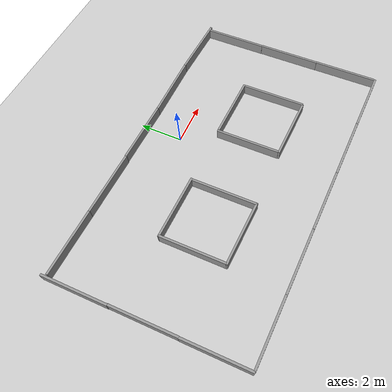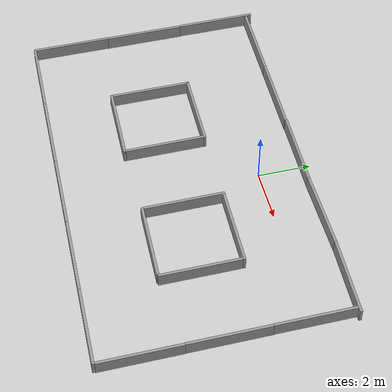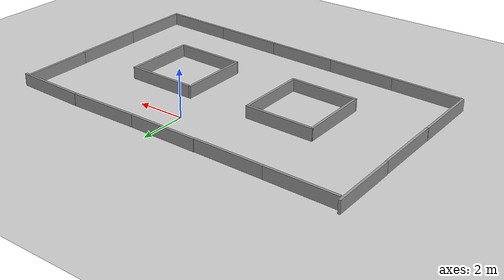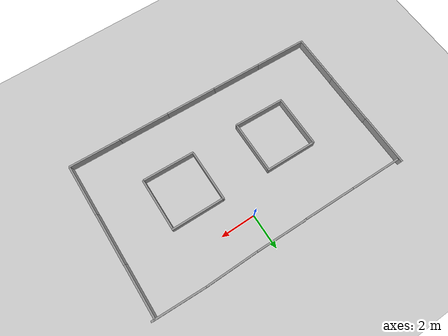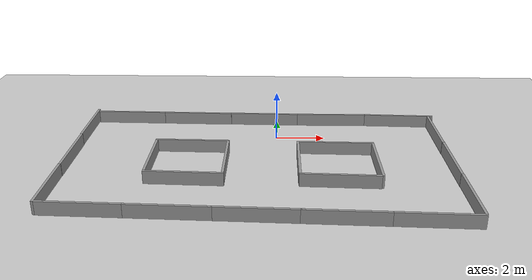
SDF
<sdf version="1.6">
 <world name="default">
  <light name="sun" type="directional">
   <pose>0 0 10 0 -0 0</pose>
   <diffuse>0.8 0.8 0.8 1</diffuse>
   <specular>0.1 0.1 0.1 1</specular>
   <attenuation>
    <range>1000</range>
    <constant>0.9</constant>
    <linear>0.01</linear>
    <quadratic>0.001</quadratic>
   </attenuation>
   <direction>-0.5 0.5 -1</direction>
  </light>
  <model name="ground_plane">
   <static>1</static>
   <link name="link">
    <collision name="collision">
     <geometry><plane><normal>0 0 1</normal><size>100 100</size></plane></geometry>
     <surface><friction><ode><mu>100</mu><mu2>50</mu2></ode></friction></surface>
    </collision>
    <visual name="visual">
     <cast_shadows>0</cast_shadows>
     <geometry><plane><normal>0 0 1</normal><size>100 100</size></plane></geometry>
     <material>
      <script><uri>file://media/materials/scripts/gazebo.material</uri><name>Gazebo/Grey</name></script>
     </material>
    </visual>
   </link>
  </model>
  <gravity>0 0 -9.8</gravity>
  <magnetic_field>6e-06 2.3e-05 -4.2e-05</magnetic_field>
  <atmosphere type="adiabatic"/>
  <physics name="default_physics" default="0" type="ode">
   <max_step_size>0.001</max_step_size>
   <real_time_factor>1</real_time_factor>
   <real_time_update_rate>1000</real_time_update_rate>
  </physics>
  <scene><ambient>0.4 0.4 0.4 1</ambient><background>0.7 0.7 0.7 1</background><shadows>1</shadows></scene>
  <spherical_coordinates>
   <surface_model>EARTH_WGS84</surface_model>
   <latitude_deg>0</latitude_deg>
   <longitude_deg>0</longitude_deg>
   <elevation>0</elevation>
   <heading_deg>0</heading_deg>
  </spherical_coordinates>
  <model name="plank_clone">
   <link name="link">
    <inertial>
     <mass>1</mass>
     <inertia>
      <ixx>0.166667</ixx>
      <ixy>0</ixy>
      <ixz>0</ixz>
      <iyy>0.166667</iyy>
      <iyz>0</iyz>
      <izz>0.166667</izz>
     </inertia>
    </inertial>
    <visual name="visual">
     <geometry><box><size>0.1 3 1</size></box></geometry>
     <material>
      <script><name>Gazebo/Grey</name><uri>file://media/materials/scripts/gazebo.material</uri></script>
      <ambient>0.3 0.3 0.3 1</ambient>
      <diffuse>0.7 0.7 0.7 1</diffuse>
      <specular>0.01 0.01 0.01 1</specular>
      <emissive>0 0 0 1</emissive>
      <shader type="vertex"><normal_map>__default__</normal_map></shader>
     </material>
    </visual>
    <collision name="collision">
     <geometry><box><size>0.1 3 1</size></box></geometry>
     <surface>
      <friction>
       <ode><mu>1</mu><mu2>1</mu2><fdir1>0 0 0</fdir1><slip1>0</slip1><slip2>0</slip2></ode>
       <torsional>
        <coefficient>1</coefficient>
        <patch_radius>0</patch_radius>
        <surface_radius>0</surface_radius>
        <use_patch_radius>1</use_patch_radius>
        <ode><slip>0</slip></ode>
       </torsional>
      </friction>
      <bounce><restitution_coefficient>0</restitution_coefficient><threshold>1e+06</threshold></bounce>
      <contact>
       <collide_without_contact>0</collide_without_contact>
       <collide_without_contact_bitmask>1</collide_without_contact_bitmask>
       <collide_bitmask>1</collide_bitmask>
       <ode>
        <soft_cfm>0</soft_cfm>
        <soft_erp>0.2</soft_erp>
        <kp>1e+13</kp>
        <kd>1</kd>
        <max_vel>0.01</max_vel>
        <min_depth>0</min_depth>
       </ode>
       <bullet>
        <split_impulse>1</split_impulse>
        <split_impulse_penetration_threshold>-0.01</split_impulse_penetration_threshold>
        <soft_cfm>0</soft_cfm>
        <soft_erp>0.2</soft_erp>
        <kp>1e+13</kp>
        <kd>1</kd>
       </bullet>
      </contact>
     </surface>
    </collision>
   </link>
   <static>0</static>
   <pose>0.863631 -3.03591 0 0 -0 0</pose>
  </model>
  <model name="plank_clone_0">
   <link name="link">
    <inertial>
     <mass>1</mass>
     <inertia>
      <ixx>0.166667</ixx>
      <ixy>0</ixy>
      <ixz>0</ixz>
      <iyy>0.166667</iyy>
      <iyz>0</iyz>
      <izz>0.166667</izz>
     </inertia>
    </inertial>
    <visual name="visual">
     <geometry><box><size>0.1 3 1</size></box></geometry>
     <material>
      <script><name>Gazebo/Grey</name><uri>file://media/materials/scripts/gazebo.material</uri></script>
      <ambient>0.3 0.3 0.3 1</ambient>
      <diffuse>0.7 0.7 0.7 1</diffuse>
      <specular>0.01 0.01 0.01 1</specular>
      <emissive>0 0 0 1</emissive>
      <shader type="vertex"><normal_map>__default__</normal_map></shader>
     </material>
    </visual>
    <collision name="collision">
     <geometry><box><size>0.1 3 1</size></box></geometry>
     <surface>
      <friction>
       <ode><mu>1</mu><mu2>1</mu2><fdir1>0 0 0</fdir1><slip1>0</slip1><slip2>0</slip2></ode>
       <torsional>
        <coefficient>1</coefficient>
        <patch_radius>0</patch_radius>
        <surface_radius>0</surface_radius>
        <use_patch_radius>1</use_patch_radius>
        <ode><slip>0</slip></ode>
       </torsional>
      </friction>
      <bounce><restitution_coefficient>0</restitution_coefficient><threshold>1e+06</threshold></bounce>
      <contact>
       <collide_without_contact>0</collide_without_contact>
       <collide_without_contact_bitmask>1</collide_without_contact_bitmask>
       <collide_bitmask>1</collide_bitmask>
       <ode>
        <soft_cfm>0</soft_cfm>
        <soft_erp>0.2</soft_erp>
        <kp>1e+13</kp>
        <kd>1</kd>
        <max_vel>0.01</max_vel>
        <min_depth>0</min_depth>
       </ode>
       <bullet>
        <split_impulse>1</split_impulse>
        <split_impulse_penetration_threshold>-0.01</split_impulse_penetration_threshold>
        <soft_cfm>0</soft_cfm>
        <soft_erp>0.2</soft_erp>
        <kp>1e+13</kp>
        <kd>1</kd>
       </bullet>
      </contact>
     </surface>
    </collision>
   </link>
   <static>0</static>
   <pose>2.4237 1.6118 0 0 -0 1.5742</pose>
  </model>
  <model name="plank_clone_1">
   <link name="link">
    <inertial>
     <mass>1</mass>
     <inertia>
      <ixx>0.166667</ixx>
      <ixy>0</ixy>
      <ixz>0</ixz>
      <iyy>0.166667</iyy>
      <iyz>0</iyz>
      <izz>0.166667</izz>
     </inertia>
    </inertial>
    <visual name="visual">
     <geometry><box><size>0.1 3 1</size></box></geometry>
     <material>
      <script><name>Gazebo/Grey</name><uri>file://media/materials/scripts/gazebo.material</uri></script>
      <ambient>0.3 0.3 0.3 1</ambient>
      <diffuse>0.7 0.7 0.7 1</diffuse>
      <specular>0.01 0.01 0.01 1</specular>
      <emissive>0 0 0 1</emissive>
      <shader type="vertex"><normal_map>__default__</normal_map></shader>
     </material>
    </visual>
    <collision name="collision">
     <geometry><box><size>0.1 3 1</size></box></geometry>
     <surface>
      <friction>
       <ode><mu>1</mu><mu2>1</mu2><fdir1>0 0 0</fdir1><slip1>0</slip1><slip2>0</slip2></ode>
       <torsional>
        <coefficient>1</coefficient>
        <patch_radius>0</patch_radius>
        <surface_radius>0</surface_radius>
        <use_patch_radius>1</use_patch_radius>
        <ode><slip>0</slip></ode>
       </torsional>
      </friction>
      <bounce><restitution_coefficient>0</restitution_coefficient><threshold>1e+06</threshold></bounce>
      <contact>
       <collide_without_contact>0</collide_without_contact>
       <collide_without_contact_bitmask>1</collide_without_contact_bitmask>
       <collide_bitmask>1</collide_bitmask>
       <ode>
        <soft_cfm>0</soft_cfm>
        <soft_erp>0.2</soft_erp>
        <kp>1e+13</kp>
        <kd>1</kd>
        <max_vel>0.01</max_vel>
        <min_depth>0</min_depth>
       </ode>
       <bullet>
        <split_impulse>1</split_impulse>
        <split_impulse_penetration_threshold>-0.01</split_impulse_penetration_threshold>
        <soft_cfm>0</soft_cfm>
        <soft_erp>0.2</soft_erp>
        <kp>1e+13</kp>
        <kd>1</kd>
       </bullet>
      </contact>
     </surface>
    </collision>
   </link>
   <static>0</static>
   <pose>3.86282 -3.20354 0 0 -0 0</pose>
  </model>
  <model name="plank_clone_2">
   <link name="link">
    <inertial>
     <mass>1</mass>
     <inertia>
      <ixx>0.166667</ixx>
      <ixy>0</ixy>
      <ixz>0</ixz>
      <iyy>0.166667</iyy>
      <iyz>0</iyz>
      <izz>0.166667</izz>
     </inertia>
    </inertial>
    <visual name="visual">
     <geometry><box><size>0.1 3 1</size></box></geometry>
     <material>
      <script><name>Gazebo/Grey</name><uri>file://media/materials/scripts/gazebo.material</uri></script>
      <ambient>0.3 0.3 0.3 1</ambient>
      <diffuse>0.7 0.7 0.7 1</diffuse>
      <specular>0.01 0.01 0.01 1</specular>
      <emissive>0 0 0 1</emissive>
      <shader type="vertex"><normal_map>__default__</normal_map></shader>
     </material>
    </visual>
    <collision name="collision">
     <geometry><box><size>0.1 3 1</size></box></geometry>
     <surface>
      <friction>
       <ode><mu>1</mu><mu2>1</mu2><fdir1>0 0 0</fdir1><slip1>0</slip1><slip2>0</slip2></ode>
       <torsional>
        <coefficient>1</coefficient>
        <patch_radius>0</patch_radius>
        <surface_radius>0</surface_radius>
        <use_patch_radius>1</use_patch_radius>
        <ode><slip>0</slip></ode>
       </torsional>
      </friction>
      <bounce><restitution_coefficient>0</restitution_coefficient><threshold>1e+06</threshold></bounce>
      <contact>
       <collide_without_contact>0</collide_without_contact>
       <collide_without_contact_bitmask>1</collide_without_contact_bitmask>
       <collide_bitmask>1</collide_bitmask>
       <ode>
        <soft_cfm>0</soft_cfm>
        <soft_erp>0.2</soft_erp>
        <kp>1e+13</kp>
        <kd>1</kd>
        <max_vel>0.01</max_vel>
        <min_depth>0</min_depth>
       </ode>
       <bullet>
        <split_impulse>1</split_impulse>
        <split_impulse_penetration_threshold>-0.01</split_impulse_penetration_threshold>
        <soft_cfm>0</soft_cfm>
        <soft_erp>0.2</soft_erp>
        <kp>1e+13</kp>
        <kd>1</kd>
       </bullet>
      </contact>
     </surface>
    </collision>
   </link>
   <static>0</static>
   <pose>6.73737 -5.95983 0 0 -0 0</pose>
  </model>
  <model name="plank_clone_3">
   <link name="link">
    <inertial>
     <mass>1</mass>
     <inertia>
      <ixx>0.166667</ixx>
      <ixy>0</ixy>
      <ixz>0</ixz>
      <iyy>0.166667</iyy>
      <iyz>0</iyz>
      <izz>0.166667</izz>
     </inertia>
    </inertial>
    <visual name="visual">
     <geometry><box><size>0.1 3 1</size></box></geometry>
     <material>
      <script><name>Gazebo/Grey</name><uri>file://media/materials/scripts/gazebo.material</uri></script>
      <ambient>0.3 0.3 0.3 1</ambient>
      <diffuse>0.7 0.7 0.7 1</diffuse>
      <specular>0.01 0.01 0.01 1</specular>
      <emissive>0 0 0 1</emissive>
      <shader type="vertex"><normal_map>__default__</normal_map></shader>
     </material>
    </visual>
    <collision name="collision">
     <geometry><box><size>0.1 3 1</size></box></geometry>
     <surface>
      <friction>
       <ode><mu>1</mu><mu2>1</mu2><fdir1>0 0 0</fdir1><slip1>0</slip1><slip2>0</slip2></ode>
       <torsional>
        <coefficient>1</coefficient>
        <patch_radius>0</patch_radius>
        <surface_radius>0</surface_radius>
        <use_patch_radius>1</use_patch_radius>
        <ode><slip>0</slip></ode>
       </torsional>
      </friction>
      <bounce><restitution_coefficient>0</restitution_coefficient><threshold>1e+06</threshold></bounce>
      <contact>
       <collide_without_contact>0</collide_without_contact>
       <collide_without_contact_bitmask>1</collide_without_contact_bitmask>
       <collide_bitmask>1</collide_bitmask>
       <ode>
        <soft_cfm>0</soft_cfm>
        <soft_erp>0.2</soft_erp>
        <kp>1e+13</kp>
        <kd>1</kd>
        <max_vel>0.01</max_vel>
        <min_depth>0</min_depth>
       </ode>
       <bullet>
        <split_impulse>1</split_impulse>
        <split_impulse_penetration_threshold>-0.01</split_impulse_penetration_threshold>
        <soft_cfm>0</soft_cfm>
        <soft_erp>0.2</soft_erp>
        <kp>1e+13</kp>
        <kd>1</kd>
       </bullet>
      </contact>
     </surface>
    </collision>
   </link>
   <static>0</static>
   <pose>-0.563399 1.64199 0 0 0 -1.59343</pose>
  </model>
  <model name="plank_clone_4">
   <link name="link">
    <inertial>
     <mass>1</mass>
     <inertia>
      <ixx>0.166667</ixx>
      <ixy>0</ixy>
      <ixz>0</ixz>
      <iyy>0.166667</iyy>
      <iyz>0</iyz>
      <izz>0.166667</izz>
     </inertia>
    </inertial>
    <visual name="visual">
     <geometry><box><size>0.1 3 1</size></box></geometry>
     <material>
      <script><name>Gazebo/Grey</name><uri>file://media/materials/scripts/gazebo.material</uri></script>
      <ambient>0.3 0.3 0.3 1</ambient>
      <diffuse>0.7 0.7 0.7 1</diffuse>
      <specular>0.01 0.01 0.01 1</specular>
      <emissive>0 0 0 1</emissive>
      <shader type="vertex"><normal_map>__default__</normal_map></shader>
     </material>
    </visual>
    <collision name="collision">
     <geometry><box><size>0.1 3 1</size></box></geometry>
     <surface>
      <friction>
       <ode><mu>1</mu><mu2>1</mu2><fdir1>0 0 0</fdir1><slip1>0</slip1><slip2>0</slip2></ode>
       <torsional>
        <coefficient>1</coefficient>
        <patch_radius>0</patch_radius>
        <surface_radius>0</surface_radius>
        <use_patch_radius>1</use_patch_radius>
        <ode><slip>0</slip></ode>
       </torsional>
      </friction>
      <bounce><restitution_coefficient>0</restitution_coefficient><threshold>1e+06</threshold></bounce>
      <contact>
       <collide_without_contact>0</collide_without_contact>
       <collide_without_contact_bitmask>1</collide_without_contact_bitmask>
       <collide_bitmask>1</collide_bitmask>
       <ode>
        <soft_cfm>0</soft_cfm>
        <soft_erp>0.2</soft_erp>
        <kp>1e+13</kp>
        <kd>1</kd>
        <max_vel>0.01</max_vel>
        <min_depth>0</min_depth>
       </ode>
       <bullet>
        <split_impulse>1</split_impulse>
        <split_impulse_penetration_threshold>-0.01</split_impulse_penetration_threshold>
        <soft_cfm>0</soft_cfm>
        <soft_erp>0.2</soft_erp>
        <kp>1e+13</kp>
        <kd>1</kd>
       </bullet>
      </contact>
     </surface>
    </collision>
   </link>
   <static>0</static>
   <pose>2.41117 -1.61641 0 0 0 -1.59535</pose>
  </model>
  <model name="plank_clone_5">
   <link name="link">
    <inertial>
     <mass>1</mass>
     <inertia>
      <ixx>0.166667</ixx>
      <ixy>0</ixy>
      <ixz>0</ixz>
      <iyy>0.166667</iyy>
      <iyz>0</iyz>
      <izz>0.166667</izz>
     </inertia>
    </inertial>
    <visual name="visual">
     <geometry><box><size>0.1 3 1</size></box></geometry>
     <material>
      <script><name>Gazebo/Grey</name><uri>file://media/materials/scripts/gazebo.material</uri></script>
      <ambient>0.3 0.3 0.3 1</ambient>
      <diffuse>0.7 0.7 0.7 1</diffuse>
      <specular>0.01 0.01 0.01 1</specular>
      <emissive>0 0 0 1</emissive>
      <shader type="vertex"><normal_map>__default__</normal_map></shader>
     </material>
    </visual>
    <collision name="collision">
     <geometry><box><size>0.1 3 1</size></box></geometry>
     <surface>
      <friction>
       <ode><mu>1</mu><mu2>1</mu2><fdir1>0 0 0</fdir1><slip1>0</slip1><slip2>0</slip2></ode>
       <torsional>
        <coefficient>1</coefficient>
        <patch_radius>0</patch_radius>
        <surface_radius>0</surface_radius>
        <use_patch_radius>1</use_patch_radius>
        <ode><slip>0</slip></ode>
       </torsional>
      </friction>
      <bounce><restitution_coefficient>0</restitution_coefficient><threshold>1e+06</threshold></bounce>
      <contact>
       <collide_without_contact>0</collide_without_contact>
       <collide_without_contact_bitmask>1</collide_without_contact_bitmask>
       <collide_bitmask>1</collide_bitmask>
       <ode>
        <soft_cfm>0</soft_cfm>
        <soft_erp>0.2</soft_erp>
        <kp>1e+13</kp>
        <kd>1</kd>
        <max_vel>0.01</max_vel>
        <min_depth>0</min_depth>
       </ode>
       <bullet>
        <split_impulse>1</split_impulse>
        <split_impulse_penetration_threshold>-0.01</split_impulse_penetration_threshold>
        <soft_cfm>0</soft_cfm>
        <soft_erp>0.2</soft_erp>
        <kp>1e+13</kp>
        <kd>1</kd>
       </bullet>
      </contact>
     </surface>
    </collision>
   </link>
   <static>0</static>
   <pose>2.32848 -4.63058 0 0 0 -1.61065</pose>
  </model>
  <model name="plank_clone_6">
   <link name="link">
    <inertial>
     <mass>1</mass>
     <inertia>
      <ixx>0.166667</ixx>
      <ixy>0</ixy>
      <ixz>0</ixz>
      <iyy>0.166667</iyy>
      <iyz>0</iyz>
      <izz>0.166667</izz>
     </inertia>
    </inertial>
    <visual name="visual">
     <geometry><box><size>0.1 3 1</size></box></geometry>
     <material>
      <script><name>Gazebo/Grey</name><uri>file://media/materials/scripts/gazebo.material</uri></script>
      <ambient>0.3 0.3 0.3 1</ambient>
      <diffuse>0.7 0.7 0.7 1</diffuse>
      <specular>0.01 0.01 0.01 1</specular>
      <emissive>0 0 0 1</emissive>
      <shader type="vertex"><normal_map>__default__</normal_map></shader>
     </material>
    </visual>
    <collision name="collision">
     <geometry><box><size>0.1 3 1</size></box></geometry>
     <surface>
      <friction>
       <ode><mu>1</mu><mu2>1</mu2><fdir1>0 0 0</fdir1><slip1>0</slip1><slip2>0</slip2></ode>
       <torsional>
        <coefficient>1</coefficient>
        <patch_radius>0</patch_radius>
        <surface_radius>0</surface_radius>
        <use_patch_radius>1</use_patch_radius>
        <ode><slip>0</slip></ode>
       </torsional>
      </friction>
      <bounce><restitution_coefficient>0</restitution_coefficient><threshold>1e+06</threshold></bounce>
      <contact>
       <collide_without_contact>0</collide_without_contact>
       <collide_without_contact_bitmask>1</collide_without_contact_bitmask>
       <collide_bitmask>1</collide_bitmask>
       <ode>
        <soft_cfm>0</soft_cfm>
        <soft_erp>0.2</soft_erp>
        <kp>1e+13</kp>
        <kd>1</kd>
        <max_vel>0.01</max_vel>
        <min_depth>0</min_depth>
       </ode>
       <bullet>
        <split_impulse>1</split_impulse>
        <split_impulse_penetration_threshold>-0.01</split_impulse_penetration_threshold>
        <soft_cfm>0</soft_cfm>
        <soft_erp>0.2</soft_erp>
        <kp>1e+13</kp>
        <kd>1</kd>
       </bullet>
      </contact>
     </surface>
    </collision>
   </link>
   <static>0</static>
   <pose>5.4255 1.56052 0 0 0 -1.60899</pose>
  </model>
  <model name="plank_clone_7">
   <link name="link">
    <inertial>
     <mass>1</mass>
     <inertia>
      <ixx>0.166667</ixx>
      <ixy>0</ixy>
      <ixz>0</ixz>
      <iyy>0.166667</iyy>
      <iyz>0</iyz>
      <izz>0.166667</izz>
     </inertia>
    </inertial>
    <visual name="visual">
     <geometry><box><size>0.1 3 1</size></box></geometry>
     <material>
      <script><name>Gazebo/Grey</name><uri>file://media/materials/scripts/gazebo.material</uri></script>
      <ambient>0.3 0.3 0.3 1</ambient>
      <diffuse>0.7 0.7 0.7 1</diffuse>
      <specular>0.01 0.01 0.01 1</specular>
      <emissive>0 0 0 1</emissive>
      <shader type="vertex"><normal_map>__default__</normal_map></shader>
     </material>
    </visual>
    <collision name="collision">
     <geometry><box><size>0.1 3 1</size></box></geometry>
     <surface>
      <friction>
       <ode><mu>1</mu><mu2>1</mu2><fdir1>0 0 0</fdir1><slip1>0</slip1><slip2>0</slip2></ode>
       <torsional>
        <coefficient>1</coefficient>
        <patch_radius>0</patch_radius>
        <surface_radius>0</surface_radius>
        <use_patch_radius>1</use_patch_radius>
        <ode><slip>0</slip></ode>
       </torsional>
      </friction>
      <bounce><restitution_coefficient>0</restitution_coefficient><threshold>1e+06</threshold></bounce>
      <contact>
       <collide_without_contact>0</collide_without_contact>
       <collide_without_contact_bitmask>1</collide_without_contact_bitmask>
       <collide_bitmask>1</collide_bitmask>
       <ode>
        <soft_cfm>0</soft_cfm>
        <soft_erp>0.2</soft_erp>
        <kp>1e+13</kp>
        <kd>1</kd>
        <max_vel>0.01</max_vel>
        <min_depth>0</min_depth>
       </ode>
       <bullet>
        <split_impulse>1</split_impulse>
        <split_impulse_penetration_threshold>-0.01</split_impulse_penetration_threshold>
        <soft_cfm>0</soft_cfm>
        <soft_erp>0.2</soft_erp>
        <kp>1e+13</kp>
        <kd>1</kd>
       </bullet>
      </contact>
     </surface>
    </collision>
   </link>
   <static>0</static>
   <pose>6.72099 0.005847 0 0 -0 0</pose>
  </model>
  <model name="plank_clone_8">
   <link name="link">
    <inertial>
     <mass>1</mass>
     <inertia>
      <ixx>0.166667</ixx>
      <ixy>0</ixy>
      <ixz>0</ixz>
      <iyy>0.166667</iyy>
      <iyz>0</iyz>
      <izz>0.166667</izz>
     </inertia>
    </inertial>
    <visual name="visual">
     <geometry><box><size>0.1 3 1</size></box></geometry>
     <material>
      <script><name>Gazebo/Grey</name><uri>file://media/materials/scripts/gazebo.material</uri></script>
      <ambient>0.3 0.3 0.3 1</ambient>
      <diffuse>0.7 0.7 0.7 1</diffuse>
      <specular>0.01 0.01 0.01 1</specular>
      <emissive>0 0 0 1</emissive>
      <shader type="vertex"><normal_map>__default__</normal_map></shader>
     </material>
    </visual>
    <collision name="collision">
     <geometry><box><size>0.1 3 1</size></box></geometry>
     <surface>
      <friction>
       <ode><mu>1</mu><mu2>1</mu2><fdir1>0 0 0</fdir1><slip1>0</slip1><slip2>0</slip2></ode>
       <torsional>
        <coefficient>1</coefficient>
        <patch_radius>0</patch_radius>
        <surface_radius>0</surface_radius>
        <use_patch_radius>1</use_patch_radius>
        <ode><slip>0</slip></ode>
       </torsional>
      </friction>
      <bounce><restitution_coefficient>0</restitution_coefficient><threshold>1e+06</threshold></bounce>
      <contact>
       <collide_without_contact>0</collide_without_contact>
       <collide_without_contact_bitmask>1</collide_without_contact_bitmask>
       <collide_bitmask>1</collide_bitmask>
       <ode>
        <soft_cfm>0</soft_cfm>
        <soft_erp>0.2</soft_erp>
        <kp>1e+13</kp>
        <kd>1</kd>
        <max_vel>0.01</max_vel>
        <min_depth>0</min_depth>
       </ode>
       <bullet>
        <split_impulse>1</split_impulse>
        <split_impulse_penetration_threshold>-0.01</split_impulse_penetration_threshold>
        <soft_cfm>0</soft_cfm>
        <soft_erp>0.2</soft_erp>
        <kp>1e+13</kp>
        <kd>1</kd>
       </bullet>
      </contact>
     </surface>
    </collision>
   </link>
   <static>0</static>
   <pose>6.72965 -2.96387 0 0 -0 0</pose>
  </model>
  <model name="plank_clone_3_clone">
   <link name="link">
    <inertial>
     <mass>1</mass>
     <inertia>
      <ixx>0.166667</ixx>
      <ixy>0</ixy>
      <ixz>0</ixz>
      <iyy>0.166667</iyy>
      <iyz>0</iyz>
      <izz>0.166667</izz>
     </inertia>
    </inertial>
    <visual name="visual">
     <geometry><box><size>0.1 3 1</size></box></geometry>
     <material>
      <script><name>Gazebo/Grey</name><uri>file://media/materials/scripts/gazebo.material</uri></script>
      <ambient>0.3 0.3 0.3 1</ambient>
      <diffuse>0.7 0.7 0.7 1</diffuse>
      <specular>0.01 0.01 0.01 1</specular>
      <emissive>0 0 0 1</emissive>
      <shader type="vertex"><normal_map>__default__</normal_map></shader>
     </material>
    </visual>
    <collision name="collision">
     <geometry><box><size>0.1 3 1</size></box></geometry>
     <surface>
      <friction>
       <ode><mu>1</mu><mu2>1</mu2><fdir1>0 0 0</fdir1><slip1>0</slip1><slip2>0</slip2></ode>
       <torsional>
        <coefficient>1</coefficient>
        <patch_radius>0</patch_radius>
        <surface_radius>0</surface_radius>
        <use_patch_radius>1</use_patch_radius>
        <ode><slip>0</slip></ode>
       </torsional>
      </friction>
      <bounce><restitution_coefficient>0</restitution_coefficient><threshold>1e+06</threshold></bounce>
      <contact>
       <collide_without_contact>0</collide_without_contact>
       <collide_without_contact_bitmask>1</collide_without_contact_bitmask>
       <collide_bitmask>1</collide_bitmask>
       <ode>
        <soft_cfm>0</soft_cfm>
        <soft_erp>0.2</soft_erp>
        <kp>1e+13</kp>
        <kd>1</kd>
        <max_vel>0.01</max_vel>
        <min_depth>0</min_depth>
       </ode>
       <bullet>
        <split_impulse>1</split_impulse>
        <split_impulse_penetration_threshold>-0.01</split_impulse_penetration_threshold>
        <soft_cfm>0</soft_cfm>
        <soft_erp>0.2</soft_erp>
        <kp>1e+13</kp>
        <kd>1</kd>
       </bullet>
      </contact>
     </surface>
    </collision>
   </link>
   <static>0</static>
   <pose>-3.54606 1.6904 0 0 0 -1.59343</pose>
  </model>
  <model name="plank_clone_4_clone">
   <link name="link">
    <inertial>
     <mass>1</mass>
     <inertia>
      <ixx>0.166667</ixx>
      <ixy>0</ixy>
      <ixz>0</ixz>
      <iyy>0.166667</iyy>
      <iyz>0</iyz>
      <izz>0.166667</izz>
     </inertia>
    </inertial>
    <visual name="visual">
     <geometry><box><size>0.1 3 1</size></box></geometry>
     <material>
      <script><name>Gazebo/Grey</name><uri>file://media/materials/scripts/gazebo.material</uri></script>
      <ambient>0.3 0.3 0.3 1</ambient>
      <diffuse>0.7 0.7 0.7 1</diffuse>
      <specular>0.01 0.01 0.01 1</specular>
      <emissive>0 0 0 1</emissive>
      <shader type="vertex"><normal_map>__default__</normal_map></shader>
     </material>
    </visual>
    <collision name="collision">
     <geometry><box><size>0.1 3 1</size></box></geometry>
     <surface>
      <friction>
       <ode><mu>1</mu><mu2>1</mu2><fdir1>0 0 0</fdir1><slip1>0</slip1><slip2>0</slip2></ode>
       <torsional>
        <coefficient>1</coefficient>
        <patch_radius>0</patch_radius>
        <surface_radius>0</surface_radius>
        <use_patch_radius>1</use_patch_radius>
        <ode><slip>0</slip></ode>
       </torsional>
      </friction>
      <bounce><restitution_coefficient>0</restitution_coefficient><threshold>1e+06</threshold></bounce>
      <contact>
       <collide_without_contact>0</collide_without_contact>
       <collide_without_contact_bitmask>1</collide_without_contact_bitmask>
       <collide_bitmask>1</collide_bitmask>
       <ode>
        <soft_cfm>0</soft_cfm>
        <soft_erp>0.2</soft_erp>
        <kp>1e+13</kp>
        <kd>1</kd>
        <max_vel>0.01</max_vel>
        <min_depth>0</min_depth>
       </ode>
       <bullet>
        <split_impulse>1</split_impulse>
        <split_impulse_penetration_threshold>-0.01</split_impulse_penetration_threshold>
        <soft_cfm>0</soft_cfm>
        <soft_erp>0.2</soft_erp>
        <kp>1e+13</kp>
        <kd>1</kd>
       </bullet>
      </contact>
     </surface>
    </collision>
   </link>
   <static>0</static>
   <pose>-3.41195 -1.50479 0 0 0 -1.59535</pose>
  </model>
  <model name="plank_clone_clone">
   <link name="link">
    <inertial>
     <mass>1</mass>
     <inertia>
      <ixx>0.166667</ixx>
      <ixy>0</ixy>
      <ixz>0</ixz>
      <iyy>0.166667</iyy>
      <iyz>0</iyz>
      <izz>0.166667</izz>
     </inertia>
    </inertial>
    <visual name="visual">
     <geometry><box><size>0.1 3 1</size></box></geometry>
     <material>
      <script><name>Gazebo/Grey</name><uri>file://media/materials/scripts/gazebo.material</uri></script>
      <ambient>0.3 0.3 0.3 1</ambient>
      <diffuse>0.7 0.7 0.7 1</diffuse>
      <specular>0.01 0.01 0.01 1</specular>
      <emissive>0 0 0 1</emissive>
      <shader type="vertex"><normal_map>__default__</normal_map></shader>
     </material>
    </visual>
    <collision name="collision">
     <geometry><box><size>0.1 3 1</size></box></geometry>
     <surface>
      <friction>
       <ode><mu>1</mu><mu2>1</mu2><fdir1>0 0 0</fdir1><slip1>0</slip1><slip2>0</slip2></ode>
       <torsional>
        <coefficient>1</coefficient>
        <patch_radius>0</patch_radius>
        <surface_radius>0</surface_radius>
        <use_patch_radius>1</use_patch_radius>
        <ode><slip>0</slip></ode>
       </torsional>
      </friction>
      <bounce><restitution_coefficient>0</restitution_coefficient><threshold>1e+06</threshold></bounce>
      <contact>
       <collide_without_contact>0</collide_without_contact>
       <collide_without_contact_bitmask>1</collide_without_contact_bitmask>
       <collide_bitmask>1</collide_bitmask>
       <ode>
        <soft_cfm>0</soft_cfm>
        <soft_erp>0.2</soft_erp>
        <kp>1e+13</kp>
        <kd>1</kd>
        <max_vel>0.01</max_vel>
        <min_depth>0</min_depth>
       </ode>
       <bullet>
        <split_impulse>1</split_impulse>
        <split_impulse_penetration_threshold>-0.01</split_impulse_penetration_threshold>
        <soft_cfm>0</soft_cfm>
        <soft_erp>0.2</soft_erp>
        <kp>1e+13</kp>
        <kd>1</kd>
       </bullet>
      </contact>
     </surface>
    </collision>
   </link>
   <static>0</static>
   <pose>-1.9673 -3.08449 0 0 -0 0</pose>
  </model>
  <model name="plank_clone_clone_0">
   <link name="link">
    <inertial>
     <mass>1</mass>
     <inertia>
      <ixx>0.166667</ixx>
      <ixy>0</ixy>
      <ixz>0</ixz>
      <iyy>0.166667</iyy>
      <iyz>0</iyz>
      <izz>0.166667</izz>
     </inertia>
    </inertial>
    <visual name="visual">
     <geometry><box><size>0.1 3 1</size></box></geometry>
     <material>
      <script><name>Gazebo/Grey</name><uri>file://media/materials/scripts/gazebo.material</uri></script>
      <ambient>0.3 0.3 0.3 1</ambient>
      <diffuse>0.7 0.7 0.7 1</diffuse>
      <specular>0.01 0.01 0.01 1</specular>
      <emissive>0 0 0 1</emissive>
      <shader type="vertex"><normal_map>__default__</normal_map></shader>
     </material>
    </visual>
    <collision name="collision">
     <geometry><box><size>0.1 3 1</size></box></geometry>
     <surface>
      <friction>
       <ode><mu>1</mu><mu2>1</mu2><fdir1>0 0 0</fdir1><slip1>0</slip1><slip2>0</slip2></ode>
       <torsional>
        <coefficient>1</coefficient>
        <patch_radius>0</patch_radius>
        <surface_radius>0</surface_radius>
        <use_patch_radius>1</use_patch_radius>
        <ode><slip>0</slip></ode>
       </torsional>
      </friction>
      <bounce><restitution_coefficient>0</restitution_coefficient><threshold>1e+06</threshold></bounce>
      <contact>
       <collide_without_contact>0</collide_without_contact>
       <collide_without_contact_bitmask>1</collide_without_contact_bitmask>
       <collide_bitmask>1</collide_bitmask>
       <ode>
        <soft_cfm>0</soft_cfm>
        <soft_erp>0.2</soft_erp>
        <kp>1e+13</kp>
        <kd>1</kd>
        <max_vel>0.01</max_vel>
        <min_depth>0</min_depth>
       </ode>
       <bullet>
        <split_impulse>1</split_impulse>
        <split_impulse_penetration_threshold>-0.01</split_impulse_penetration_threshold>
        <soft_cfm>0</soft_cfm>
        <soft_erp>0.2</soft_erp>
        <kp>1e+13</kp>
        <kd>1</kd>
       </bullet>
      </contact>
     </surface>
    </collision>
   </link>
   <static>0</static>
   <pose>-4.87053 -2.96026 0 0 -0 0</pose>
  </model>
  <model name="plank_clone_5_clone">
   <link name="link">
    <inertial>
     <mass>1</mass>
     <inertia>
      <ixx>0.166667</ixx>
      <ixy>0</ixy>
      <ixz>0</ixz>
      <iyy>0.166667</iyy>
      <iyz>0</iyz>
      <izz>0.166667</izz>
     </inertia>
    </inertial>
    <visual name="visual">
     <geometry><box><size>0.1 3 1</size></box></geometry>
     <material>
      <script><name>Gazebo/Grey</name><uri>file://media/materials/scripts/gazebo.material</uri></script>
      <ambient>0.3 0.3 0.3 1</ambient>
      <diffuse>0.7 0.7 0.7 1</diffuse>
      <specular>0.01 0.01 0.01 1</specular>
      <emissive>0 0 0 1</emissive>
      <shader type="vertex"><normal_map>__default__</normal_map></shader>
     </material>
    </visual>
    <collision name="collision">
     <geometry><box><size>0.1 3 1</size></box></geometry>
     <surface>
      <friction>
       <ode><mu>1</mu><mu2>1</mu2><fdir1>0 0 0</fdir1><slip1>0</slip1><slip2>0</slip2></ode>
       <torsional>
        <coefficient>1</coefficient>
        <patch_radius>0</patch_radius>
        <surface_radius>0</surface_radius>
        <use_patch_radius>1</use_patch_radius>
        <ode><slip>0</slip></ode>
       </torsional>
      </friction>
      <bounce><restitution_coefficient>0</restitution_coefficient><threshold>1e+06</threshold></bounce>
      <contact>
       <collide_without_contact>0</collide_without_contact>
       <collide_without_contact_bitmask>1</collide_without_contact_bitmask>
       <collide_bitmask>1</collide_bitmask>
       <ode>
        <soft_cfm>0</soft_cfm>
        <soft_erp>0.2</soft_erp>
        <kp>1e+13</kp>
        <kd>1</kd>
        <max_vel>0.01</max_vel>
        <min_depth>0</min_depth>
       </ode>
       <bullet>
        <split_impulse>1</split_impulse>
        <split_impulse_penetration_threshold>-0.01</split_impulse_penetration_threshold>
        <soft_cfm>0</soft_cfm>
        <soft_erp>0.2</soft_erp>
        <kp>1e+13</kp>
        <kd>1</kd>
       </bullet>
      </contact>
     </surface>
    </collision>
   </link>
   <static>0</static>
   <pose>-3.41684 -4.54089 0 0 0 -1.61065</pose>
  </model>
  <model name="plank_clone_6_clone">
   <link name="link">
    <inertial>
     <mass>1</mass>
     <inertia>
      <ixx>0.166667</ixx>
      <ixy>0</ixy>
      <ixz>0</ixz>
      <iyy>0.166667</iyy>
      <iyz>0</iyz>
      <izz>0.166667</izz>
     </inertia>
    </inertial>
    <visual name="visual">
     <geometry><box><size>0.1 3 1</size></box></geometry>
     <material>
      <script><name>Gazebo/Grey</name><uri>file://media/materials/scripts/gazebo.material</uri></script>
      <ambient>0.3 0.3 0.3 1</ambient>
      <diffuse>0.7 0.7 0.7 1</diffuse>
      <specular>0.01 0.01 0.01 1</specular>
      <emissive>0 0 0 1</emissive>
      <shader type="vertex"><normal_map>__default__</normal_map></shader>
     </material>
    </visual>
    <collision name="collision">
     <geometry><box><size>0.1 3 1</size></box></geometry>
     <surface>
      <friction>
       <ode><mu>1</mu><mu2>1</mu2><fdir1>0 0 0</fdir1><slip1>0</slip1><slip2>0</slip2></ode>
       <torsional>
        <coefficient>1</coefficient>
        <patch_radius>0</patch_radius>
        <surface_radius>0</surface_radius>
        <use_patch_radius>1</use_patch_radius>
        <ode><slip>0</slip></ode>
       </torsional>
      </friction>
      <bounce><restitution_coefficient>0</restitution_coefficient><threshold>1e+06</threshold></bounce>
      <contact>
       <collide_without_contact>0</collide_without_contact>
       <collide_without_contact_bitmask>1</collide_without_contact_bitmask>
       <collide_bitmask>1</collide_bitmask>
       <ode>
        <soft_cfm>0</soft_cfm>
        <soft_erp>0.2</soft_erp>
        <kp>1e+13</kp>
        <kd>1</kd>
        <max_vel>0.01</max_vel>
        <min_depth>0</min_depth>
       </ode>
       <bullet>
        <split_impulse>1</split_impulse>
        <split_impulse_penetration_threshold>-0.01</split_impulse_penetration_threshold>
        <soft_cfm>0</soft_cfm>
        <soft_erp>0.2</soft_erp>
        <kp>1e+13</kp>
        <kd>1</kd>
       </bullet>
      </contact>
     </surface>
    </collision>
   </link>
   <static>0</static>
   <pose>5.26646 -7.44946 0 0 0 -1.60899</pose>
  </model>
  <model name="plank_clone_6_clone_0">
   <link name="link">
    <inertial>
     <mass>1</mass>
     <inertia>
      <ixx>0.166667</ixx>
      <ixy>0</ixy>
      <ixz>0</ixz>
      <iyy>0.166667</iyy>
      <iyz>0</iyz>
      <izz>0.166667</izz>
     </inertia>
    </inertial>
    <visual name="visual">
     <geometry><box><size>0.1 3 1</size></box></geometry>
     <material>
      <script><name>Gazebo/Grey</name><uri>file://media/materials/scripts/gazebo.material</uri></script>
      <ambient>0.3 0.3 0.3 1</ambient>
      <diffuse>0.7 0.7 0.7 1</diffuse>
      <specular>0.01 0.01 0.01 1</specular>
      <emissive>0 0 0 1</emissive>
      <shader type="vertex"><normal_map>__default__</normal_map></shader>
     </material>
    </visual>
    <collision name="collision">
     <geometry><box><size>0.1 3 1</size></box></geometry>
     <surface>
      <friction>
       <ode><mu>1</mu><mu2>1</mu2><fdir1>0 0 0</fdir1><slip1>0</slip1><slip2>0</slip2></ode>
       <torsional>
        <coefficient>1</coefficient>
        <patch_radius>0</patch_radius>
        <surface_radius>0</surface_radius>
        <use_patch_radius>1</use_patch_radius>
        <ode><slip>0</slip></ode>
       </torsional>
      </friction>
      <bounce><restitution_coefficient>0</restitution_coefficient><threshold>1e+06</threshold></bounce>
      <contact>
       <collide_without_contact>0</collide_without_contact>
       <collide_without_contact_bitmask>1</collide_without_contact_bitmask>
       <collide_bitmask>1</collide_bitmask>
       <ode>
        <soft_cfm>0</soft_cfm>
        <soft_erp>0.2</soft_erp>
        <kp>1e+13</kp>
        <kd>1</kd>
        <max_vel>0.01</max_vel>
        <min_depth>0</min_depth>
       </ode>
       <bullet>
        <split_impulse>1</split_impulse>
        <split_impulse_penetration_threshold>-0.01</split_impulse_penetration_threshold>
        <soft_cfm>0</soft_cfm>
        <soft_erp>0.2</soft_erp>
        <kp>1e+13</kp>
        <kd>1</kd>
       </bullet>
      </contact>
     </surface>
    </collision>
   </link>
   <static>0</static>
   <pose>2.28841 -7.33572 0 0 0 -1.60899</pose>
  </model>
  <model name="plank_clone_6_clone_1">
   <link name="link">
    <inertial>
     <mass>1</mass>
     <inertia>
      <ixx>0.166667</ixx>
      <ixy>0</ixy>
      <ixz>0</ixz>
      <iyy>0.166667</iyy>
      <iyz>0</iyz>
      <izz>0.166667</izz>
     </inertia>
    </inertial>
    <visual name="visual">
     <geometry><box><size>0.1 3 1</size></box></geometry>
     <material>
      <script><name>Gazebo/Grey</name><uri>file://media/materials/scripts/gazebo.material</uri></script>
      <ambient>0.3 0.3 0.3 1</ambient>
      <diffuse>0.7 0.7 0.7 1</diffuse>
      <specular>0.01 0.01 0.01 1</specular>
      <emissive>0 0 0 1</emissive>
      <shader type="vertex"><normal_map>__default__</normal_map></shader>
     </material>
    </visual>
    <collision name="collision">
     <geometry><box><size>0.1 3 1</size></box></geometry>
     <surface>
      <friction>
       <ode><mu>1</mu><mu2>1</mu2><fdir1>0 0 0</fdir1><slip1>0</slip1><slip2>0</slip2></ode>
       <torsional>
        <coefficient>1</coefficient>
        <patch_radius>0</patch_radius>
        <surface_radius>0</surface_radius>
        <use_patch_radius>1</use_patch_radius>
        <ode><slip>0</slip></ode>
       </torsional>
      </friction>
      <bounce><restitution_coefficient>0</restitution_coefficient><threshold>1e+06</threshold></bounce>
      <contact>
       <collide_without_contact>0</collide_without_contact>
       <collide_without_contact_bitmask>1</collide_without_contact_bitmask>
       <collide_bitmask>1</collide_bitmask>
       <ode>
        <soft_cfm>0</soft_cfm>
        <soft_erp>0.2</soft_erp>
        <kp>1e+13</kp>
        <kd>1</kd>
        <max_vel>0.01</max_vel>
        <min_depth>0</min_depth>
       </ode>
       <bullet>
        <split_impulse>1</split_impulse>
        <split_impulse_penetration_threshold>-0.01</split_impulse_penetration_threshold>
        <soft_cfm>0</soft_cfm>
        <soft_erp>0.2</soft_erp>
        <kp>1e+13</kp>
        <kd>1</kd>
       </bullet>
      </contact>
     </surface>
    </collision>
   </link>
   <static>0</static>
   <pose>-0.655156 -7.22118 0 0 0 -1.60899</pose>
  </model>
  <model name="plank_clone_6_clone_2">
   <link name="link">
    <inertial>
     <mass>1</mass>
     <inertia>
      <ixx>0.166667</ixx>
      <ixy>0</ixy>
      <ixz>0</ixz>
      <iyy>0.166667</iyy>
      <iyz>0</iyz>
      <izz>0.166667</izz>
     </inertia>
    </inertial>
    <visual name="visual">
     <geometry><box><size>0.1 3 1</size></box></geometry>
     <material>
      <script><name>Gazebo/Grey</name><uri>file://media/materials/scripts/gazebo.material</uri></script>
      <ambient>0.3 0.3 0.3 1</ambient>
      <diffuse>0.7 0.7 0.7 1</diffuse>
      <specular>0.01 0.01 0.01 1</specular>
      <emissive>0 0 0 1</emissive>
      <shader type="vertex"><normal_map>__default__</normal_map></shader>
     </material>
    </visual>
    <collision name="collision">
     <geometry><box><size>0.1 3 1</size></box></geometry>
     <surface>
      <friction>
       <ode><mu>1</mu><mu2>1</mu2><fdir1>0 0 0</fdir1><slip1>0</slip1><slip2>0</slip2></ode>
       <torsional>
        <coefficient>1</coefficient>
        <patch_radius>0</patch_radius>
        <surface_radius>0</surface_radius>
        <use_patch_radius>1</use_patch_radius>
        <ode><slip>0</slip></ode>
       </torsional>
      </friction>
      <bounce><restitution_coefficient>0</restitution_coefficient><threshold>1e+06</threshold></bounce>
      <contact>
       <collide_without_contact>0</collide_without_contact>
       <collide_without_contact_bitmask>1</collide_without_contact_bitmask>
       <collide_bitmask>1</collide_bitmask>
       <ode>
        <soft_cfm>0</soft_cfm>
        <soft_erp>0.2</soft_erp>
        <kp>1e+13</kp>
        <kd>1</kd>
        <max_vel>0.01</max_vel>
        <min_depth>0</min_depth>
       </ode>
       <bullet>
        <split_impulse>1</split_impulse>
        <split_impulse_penetration_threshold>-0.01</split_impulse_penetration_threshold>
        <soft_cfm>0</soft_cfm>
        <soft_erp>0.2</soft_erp>
        <kp>1e+13</kp>
        <kd>1</kd>
       </bullet>
      </contact>
     </surface>
    </collision>
   </link>
   <static>0</static>
   <pose>-3.60636 -7.10893 0 0 0 -1.60899</pose>
  </model>
  <model name="plank_clone_6_clone_3">
   <link name="link">
    <inertial>
     <mass>1</mass>
     <inertia>
      <ixx>0.166667</ixx>
      <ixy>0</ixy>
      <ixz>0</ixz>
      <iyy>0.166667</iyy>
      <iyz>0</iyz>
      <izz>0.166667</izz>
     </inertia>
    </inertial>
    <visual name="visual">
     <geometry><box><size>0.1 3 1</size></box></geometry>
     <material>
      <script><name>Gazebo/Grey</name><uri>file://media/materials/scripts/gazebo.material</uri></script>
      <ambient>0.3 0.3 0.3 1</ambient>
      <diffuse>0.7 0.7 0.7 1</diffuse>
      <specular>0.01 0.01 0.01 1</specular>
      <emissive>0 0 0 1</emissive>
      <shader type="vertex"><normal_map>__default__</normal_map></shader>
     </material>
    </visual>
    <collision name="collision">
     <geometry><box><size>0.1 3 1</size></box></geometry>
     <surface>
      <friction>
       <ode><mu>1</mu><mu2>1</mu2><fdir1>0 0 0</fdir1><slip1>0</slip1><slip2>0</slip2></ode>
       <torsional>
        <coefficient>1</coefficient>
        <patch_radius>0</patch_radius>
        <surface_radius>0</surface_radius>
        <use_patch_radius>1</use_patch_radius>
        <ode><slip>0</slip></ode>
       </torsional>
      </friction>
      <bounce><restitution_coefficient>0</restitution_coefficient><threshold>1e+06</threshold></bounce>
      <contact>
       <collide_without_contact>0</collide_without_contact>
       <collide_without_contact_bitmask>1</collide_without_contact_bitmask>
       <collide_bitmask>1</collide_bitmask>
       <ode>
        <soft_cfm>0</soft_cfm>
        <soft_erp>0.2</soft_erp>
        <kp>1e+13</kp>
        <kd>1</kd>
        <max_vel>0.01</max_vel>
        <min_depth>0</min_depth>
       </ode>
       <bullet>
        <split_impulse>1</split_impulse>
        <split_impulse_penetration_threshold>-0.01</split_impulse_penetration_threshold>
        <soft_cfm>0</soft_cfm>
        <soft_erp>0.2</soft_erp>
        <kp>1e+13</kp>
        <kd>1</kd>
       </bullet>
      </contact>
     </surface>
    </collision>
   </link>
   <static>0</static>
   <pose>-6.57977 -6.99428 0 0 0 -1.60899</pose>
  </model>
  <model name="plank_clone_7_clone">
   <link name="link">
    <inertial>
     <mass>1</mass>
     <inertia>
      <ixx>0.166667</ixx>
      <ixy>0</ixy>
      <ixz>0</ixz>
      <iyy>0.166667</iyy>
      <iyz>0</iyz>
      <izz>0.166667</izz>
     </inertia>
    </inertial>
    <visual name="visual">
     <geometry><box><size>0.1 3 1</size></box></geometry>
     <material>
      <script><name>Gazebo/Grey</name><uri>file://media/materials/scripts/gazebo.material</uri></script>
      <ambient>0.3 0.3 0.3 1</ambient>
      <diffuse>0.7 0.7 0.7 1</diffuse>
      <specular>0.01 0.01 0.01 1</specular>
      <emissive>0 0 0 1</emissive>
      <shader type="vertex"><normal_map>__default__</normal_map></shader>
     </material>
    </visual>
    <collision name="collision">
     <geometry><box><size>0.1 3 1</size></box></geometry>
     <surface>
      <friction>
       <ode><mu>1</mu><mu2>1</mu2><fdir1>0 0 0</fdir1><slip1>0</slip1><slip2>0</slip2></ode>
       <torsional>
        <coefficient>1</coefficient>
        <patch_radius>0</patch_radius>
        <surface_radius>0</surface_radius>
        <use_patch_radius>1</use_patch_radius>
        <ode><slip>0</slip></ode>
       </torsional>
      </friction>
      <bounce><restitution_coefficient>0</restitution_coefficient><threshold>1e+06</threshold></bounce>
      <contact>
       <collide_without_contact>0</collide_without_contact>
       <collide_without_contact_bitmask>1</collide_without_contact_bitmask>
       <collide_bitmask>1</collide_bitmask>
       <ode>
        <soft_cfm>0</soft_cfm>
        <soft_erp>0.2</soft_erp>
        <kp>1e+13</kp>
        <kd>1</kd>
        <max_vel>0.01</max_vel>
        <min_depth>0</min_depth>
       </ode>
       <bullet>
        <split_impulse>1</split_impulse>
        <split_impulse_penetration_threshold>-0.01</split_impulse_penetration_threshold>
        <soft_cfm>0</soft_cfm>
        <soft_erp>0.2</soft_erp>
        <kp>1e+13</kp>
        <kd>1</kd>
       </bullet>
      </contact>
     </surface>
    </collision>
   </link>
   <static>0</static>
   <pose>-8.12235 -5.46232 0 0 -0 0</pose>
  </model>
  <model name="plank_clone_7_clone_0">
   <link name="link">
    <inertial>
     <mass>1</mass>
     <inertia>
      <ixx>0.166667</ixx>
      <ixy>0</ixy>
      <ixz>0</ixz>
      <iyy>0.166667</iyy>
      <iyz>0</iyz>
      <izz>0.166667</izz>
     </inertia>
    </inertial>
    <visual name="visual">
     <geometry><box><size>0.1 3 1</size></box></geometry>
     <material>
      <script><name>Gazebo/Grey</name><uri>file://media/materials/scripts/gazebo.material</uri></script>
      <ambient>0.3 0.3 0.3 1</ambient>
      <diffuse>0.7 0.7 0.7 1</diffuse>
      <specular>0.01 0.01 0.01 1</specular>
      <emissive>0 0 0 1</emissive>
      <shader type="vertex"><normal_map>__default__</normal_map></shader>
     </material>
    </visual>
    <collision name="collision">
     <geometry><box><size>0.1 3 1</size></box></geometry>
     <surface>
      <friction>
       <ode><mu>1</mu><mu2>1</mu2><fdir1>0 0 0</fdir1><slip1>0</slip1><slip2>0</slip2></ode>
       <torsional>
        <coefficient>1</coefficient>
        <patch_radius>0</patch_radius>
        <surface_radius>0</surface_radius>
        <use_patch_radius>1</use_patch_radius>
        <ode><slip>0</slip></ode>
       </torsional>
      </friction>
      <bounce><restitution_coefficient>0</restitution_coefficient><threshold>1e+06</threshold></bounce>
      <contact>
       <collide_without_contact>0</collide_without_contact>
       <collide_without_contact_bitmask>1</collide_without_contact_bitmask>
       <collide_bitmask>1</collide_bitmask>
       <ode>
        <soft_cfm>0</soft_cfm>
        <soft_erp>0.2</soft_erp>
        <kp>1e+13</kp>
        <kd>1</kd>
        <max_vel>0.01</max_vel>
        <min_depth>0</min_depth>
       </ode>
       <bullet>
        <split_impulse>1</split_impulse>
        <split_impulse_penetration_threshold>-0.01</split_impulse_penetration_threshold>
        <soft_cfm>0</soft_cfm>
        <soft_erp>0.2</soft_erp>
        <kp>1e+13</kp>
        <kd>1</kd>
       </bullet>
      </contact>
     </surface>
    </collision>
   </link>
   <static>0</static>
   <pose>-8.11347 -2.47624 0 0 -0 0</pose>
  </model>
  <model name="plank_clone_7_clone_1">
   <link name="link">
    <inertial>
     <mass>1</mass>
     <inertia>
      <ixx>0.166667</ixx>
      <ixy>0</ixy>
      <ixz>0</ixz>
      <iyy>0.166667</iyy>
      <iyz>0</iyz>
      <izz>0.166667</izz>
     </inertia>
    </inertial>
    <visual name="visual">
     <geometry><box><size>0.1 3 1</size></box></geometry>
     <material>
      <script><name>Gazebo/Grey</name><uri>file://media/materials/scripts/gazebo.material</uri></script>
      <ambient>0.3 0.3 0.3 1</ambient>
      <diffuse>0.7 0.7 0.7 1</diffuse>
      <specular>0.01 0.01 0.01 1</specular>
      <emissive>0 0 0 1</emissive>
      <shader type="vertex"><normal_map>__default__</normal_map></shader>
     </material>
    </visual>
    <collision name="collision">
     <geometry><box><size>0.1 3 1</size></box></geometry>
     <surface>
      <friction>
       <ode><mu>1</mu><mu2>1</mu2><fdir1>0 0 0</fdir1><slip1>0</slip1><slip2>0</slip2></ode>
       <torsional>
        <coefficient>1</coefficient>
        <patch_radius>0</patch_radius>
        <surface_radius>0</surface_radius>
        <use_patch_radius>1</use_patch_radius>
        <ode><slip>0</slip></ode>
       </torsional>
      </friction>
      <bounce><restitution_coefficient>0</restitution_coefficient><threshold>1e+06</threshold></bounce>
      <contact>
       <collide_without_contact>0</collide_without_contact>
       <collide_without_contact_bitmask>1</collide_without_contact_bitmask>
       <collide_bitmask>1</collide_bitmask>
       <ode>
        <soft_cfm>0</soft_cfm>
        <soft_erp>0.2</soft_erp>
        <kp>1e+13</kp>
        <kd>1</kd>
        <max_vel>0.01</max_vel>
        <min_depth>0</min_depth>
       </ode>
       <bullet>
        <split_impulse>1</split_impulse>
        <split_impulse_penetration_threshold>-0.01</split_impulse_penetration_threshold>
        <soft_cfm>0</soft_cfm>
        <soft_erp>0.2</soft_erp>
        <kp>1e+13</kp>
        <kd>1</kd>
       </bullet>
      </contact>
     </surface>
    </collision>
   </link>
   <static>0</static>
   <pose>-8.12788 0.524058 0 0 -0 0</pose>
  </model>
  <model name="plank_clone_3_clone_clone">
   <link name="link">
    <inertial>
     <mass>1</mass>
     <inertia>
      <ixx>0.166667</ixx>
      <ixy>0</ixy>
      <ixz>0</ixz>
      <iyy>0.166667</iyy>
      <iyz>0</iyz>
      <izz>0.166667</izz>
     </inertia>
    </inertial>
    <visual name="visual">
     <geometry><box><size>0.1 3 1</size></box></geometry>
     <material>
      <script><name>Gazebo/Grey</name><uri>file://media/materials/scripts/gazebo.material</uri></script>
      <ambient>0.3 0.3 0.3 1</ambient>
      <diffuse>0.7 0.7 0.7 1</diffuse>
      <specular>0.01 0.01 0.01 1</specular>
      <emissive>0 0 0 1</emissive>
      <shader type="vertex"><normal_map>__default__</normal_map></shader>
     </material>
    </visual>
    <collision name="collision">
     <geometry><box><size>0.1 3 1</size></box></geometry>
     <surface>
      <friction>
       <ode><mu>1</mu><mu2>1</mu2><fdir1>0 0 0</fdir1><slip1>0</slip1><slip2>0</slip2></ode>
       <torsional>
        <coefficient>1</coefficient>
        <patch_radius>0</patch_radius>
        <surface_radius>0</surface_radius>
        <use_patch_radius>1</use_patch_radius>
        <ode><slip>0</slip></ode>
       </torsional>
      </friction>
      <bounce><restitution_coefficient>0</restitution_coefficient><threshold>1e+06</threshold></bounce>
      <contact>
       <collide_without_contact>0</collide_without_contact>
       <collide_without_contact_bitmask>1</collide_without_contact_bitmask>
       <collide_bitmask>1</collide_bitmask>
       <ode>
        <soft_cfm>0</soft_cfm>
        <soft_erp>0.2</soft_erp>
        <kp>1e+13</kp>
        <kd>1</kd>
        <max_vel>0.01</max_vel>
        <min_depth>0</min_depth>
       </ode>
       <bullet>
        <split_impulse>1</split_impulse>
        <split_impulse_penetration_threshold>-0.01</split_impulse_penetration_threshold>
        <soft_cfm>0</soft_cfm>
        <soft_erp>0.2</soft_erp>
        <kp>1e+13</kp>
        <kd>1</kd>
       </bullet>
      </contact>
     </surface>
    </collision>
   </link>
   <static>0</static>
   <pose>-6.54156 1.75972 0 0 0 -1.59343</pose>
  </model>
 </world>
</sdf>
